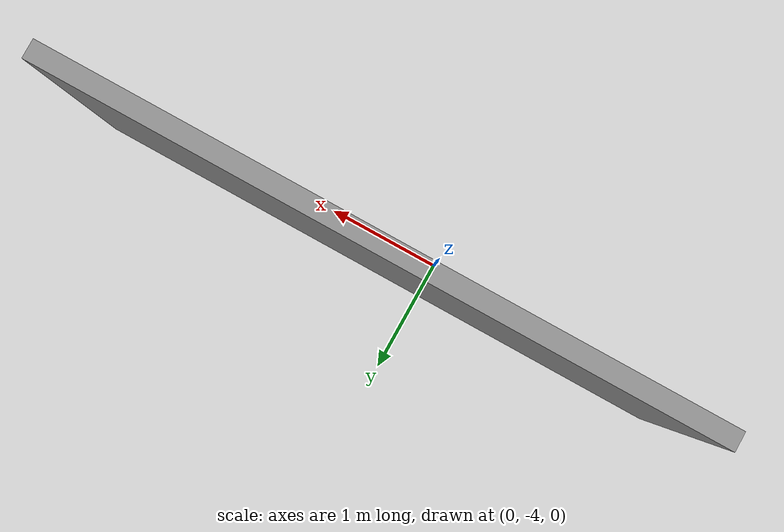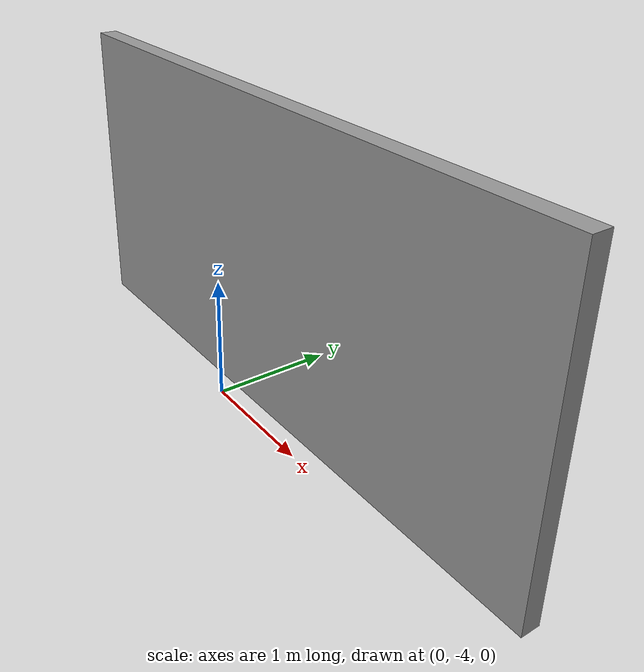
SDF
<?xml version='1.0'?>
<sdf version='1.6'>
  <model name='wall2'>
    <pose frame=''>0.414911 -3.77658 0 0 -0 0</pose>
    <link name='Wall_10'>
      <collision name='Wall_10_Collision'>
        <geometry>
          <box>
            <size>5.25 0.15 2.5</size>
          </box>
        </geometry>
        <pose frame=''>0 0 1.25 0 -0 0</pose>
      </collision>
      <visual name='Wall_10_Visual'>
        <pose frame=''>0 0 1.25 0 -0 0</pose>
        <geometry>
          <box>
            <size>5.25 0.15 2.5</size>
          </box>
        </geometry>
        <material>
          <script>
            <uri>file://media/materials/scripts/gazebo.material</uri>
            <name>Gazebo/Grey</name>
          </script>
          <ambient>1 1 1 1</ambient>
        </material>
        <meta>
          <layer>0</layer>
        </meta>
      </visual>
      <pose frame=''>0 0 0 0 -0 0</pose>
    </link>
    <static>1</static>
  </model>
</sdf>
